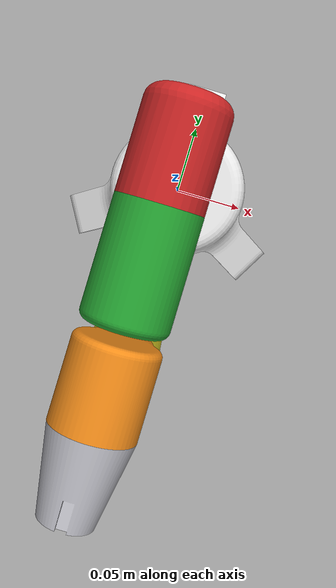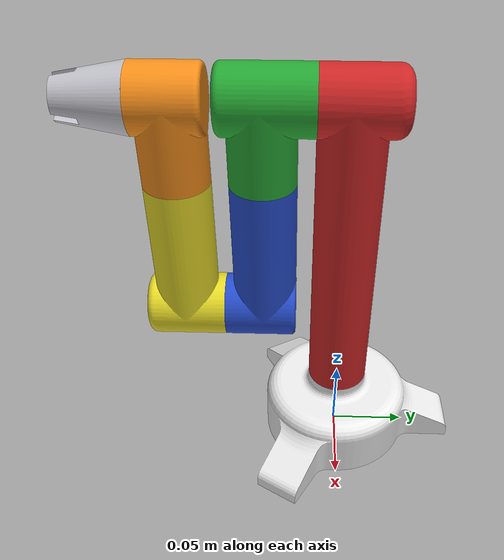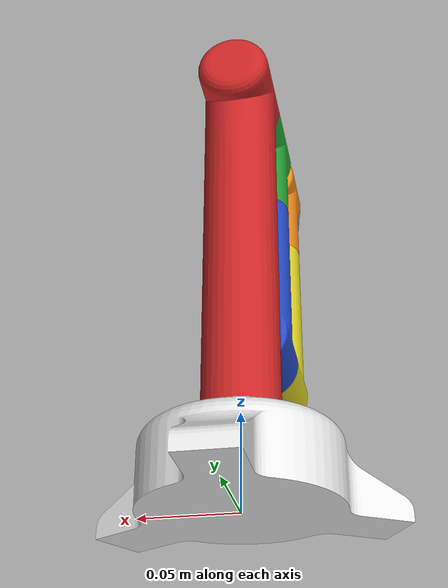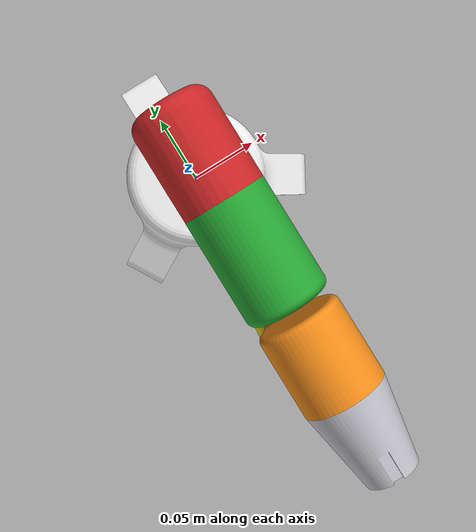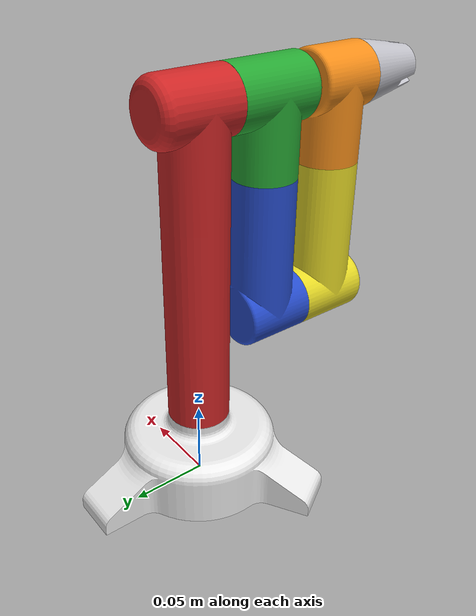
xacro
<?xml version="1.0"?>
<robot xmlns:xacro="http://www.ros.org/wiki/xacro" name="welder">
    <xacro:arg name="initial_positions_file" default="initial_positions.yaml" />

    <!-- Import welder urdf file -->
    <xacro:include filename="$(find welder_description)/urdf/welder.xacro" />

    <!-- Import control_xacro -->
    <xacro:include filename="welder.ros2_control.xacro" />

    <xacro:welder_ros2_control name="FakeSystem" initial_positions_file="$(arg initial_positions_file)"/>

</robot>

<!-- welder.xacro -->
<robot name="welder" xmlns:xacro="http://www.ros.org/wiki/xacro">

<xacro:include filename="$(find welder_description)/urdf/ros2_control.xacro" />
<xacro:include filename="$(find welder_description)/urdf/welder.trans" />
<xacro:include filename="$(find welder_description)/urdf/welder.gazebo" />

<link name="world">

</link>

<link name="base_link">
  <inertial>
    <origin xyz="-7.16285389829585e-11 -1.5064593165281103e-11 0.019107627086653742" rpy="0 0 0"/>
    <mass value="2.955437891841375"/>
    <inertia ixx="0.002819" iyy="0.002819" izz="0.004764" ixy="-0.0" iyz="-0.0" ixz="-0.0"/>
  </inertial>
  <visual>
    <origin xyz="0 0 0" rpy="0 0 0"/>
    <geometry>
      <mesh filename="file://$(find welder_description)/meshes/base_link.stl" scale="0.001 0.001 0.001"/>
    </geometry>
  </visual>
  <collision>
    <origin xyz="0 0 0" rpy="0 0 0"/>
    <geometry>
      <mesh filename="file://$(find welder_description)/meshes/base_link.stl" scale="0.001 0.001 0.001"/>
    </geometry>
  </collision>
</link>

<link name="link_1_1">
  <inertial>
    <origin xyz="0.0 0.0009431909165482249 0.11440920058437602" rpy="0 0 0"/>
    <mass value="2.2877730999420254"/>
    <inertia ixx="0.009859" iyy="0.009807" izz="0.000515" ixy="0.0" iyz="-0.000185" ixz="0.0"/>
  </inertial>
  <visual>
    <origin xyz="-0.0 -0.0 -0.05" rpy="0 0 0"/>
    <geometry>
      <mesh filename="file://$(find welder_description)/meshes/link_1_1.stl" scale="0.001 0.001 0.001"/>
    </geometry>
  </visual>
  <collision>
    <origin xyz="-0.0 -0.0 -0.05" rpy="0 0 0"/>
    <geometry>
      <mesh filename="file://$(find welder_description)/meshes/link_1_1.stl" scale="0.001 0.001 0.001"/>
    </geometry>
  </collision>
</link>

<link name="link_2_1">
  <inertial>
    <origin xyz="0.0 -0.02834196834303381 -0.012543410312423592" rpy="0 0 0"/>
    <mass value="0.8650806084810733"/>
    <inertia ixx="0.000478" iyy="0.0004" izz="0.000257" ixy="0.0" iyz="-1.8e-05" ixz="0.0"/>
  </inertial>
  <visual>
    <origin xyz="-0.0 0.02 -0.25" rpy="0 0 0"/>
    <geometry>
      <mesh filename="file://$(find welder_description)/meshes/link_2_1.stl" scale="0.001 0.001 0.001"/>
    </geometry>
  </visual>
  <collision>
    <origin xyz="-0.0 0.02 -0.25" rpy="0 0 0"/>
    <geometry>
      <mesh filename="file://$(find welder_description)/meshes/link_2_1.stl" scale="0.001 0.001 0.001"/>
    </geometry>
  </collision>
</link>

<link name="link_3_1">
  <inertial>
    <origin xyz="0.0 -0.0009734727614764405 -0.056920756556270824" rpy="0 0 0"/>
    <mass value="1.1630985552142648"/>
    <inertia ixx="0.001298" iyy="0.00127" izz="0.000267" ixy="0.0" iyz="-3.8e-05" ixz="0.0"/>
  </inertial>
  <visual>
    <origin xyz="-0.0 0.05 -0.2" rpy="0 0 0"/>
    <geometry>
      <mesh filename="file://$(find welder_description)/meshes/link_3_1.stl" scale="0.001 0.001 0.001"/>
    </geometry>
  </visual>
  <collision>
    <origin xyz="-0.0 0.05 -0.2" rpy="0 0 0"/>
    <geometry>
      <mesh filename="file://$(find welder_description)/meshes/link_3_1.stl" scale="0.001 0.001 0.001"/>
    </geometry>
  </collision>
</link>

<link name="link_4_1">
  <inertial>
    <origin xyz="0.0 -0.024901368509315194 0.031832335951871196" rpy="0 0 0"/>
    <mass value="1.2085805984841382"/>
    <inertia ixx="0.001374" iyy="0.001327" izz="0.000295" ixy="0.0" iyz="4e-06" ixz="0.0"/>
  </inertial>
  <visual>
    <origin xyz="-0.0 0.075 -0.11" rpy="0 0 0"/>
    <geometry>
      <mesh filename="file://$(find welder_description)/meshes/link_4_1.stl" scale="0.001 0.001 0.001"/>
    </geometry>
  </visual>
  <collision>
    <origin xyz="-0.0 0.075 -0.11" rpy="0 0 0"/>
    <geometry>
      <mesh filename="file://$(find welder_description)/meshes/link_4_1.stl" scale="0.001 0.001 0.001"/>
    </geometry>
  </collision>
</link>

<link name="link_5_1">
  <inertial>
    <origin xyz="0.0 -4.404769588479962e-05 0.03489668781804081" rpy="0 0 0"/>
    <mass value="0.7187100595069817"/>
    <inertia ixx="0.000352" iyy="0.000343" izz="0.000159" ixy="-0.0" iyz="1e-06" ixz="0.0"/>
  </inertial>
  <visual>
    <origin xyz="-0.0 0.1 -0.2" rpy="0 0 0"/>
    <geometry>
      <mesh filename="file://$(find welder_description)/meshes/link_5_1.stl" scale="0.001 0.001 0.001"/>
    </geometry>
  </visual>
  <collision>
    <origin xyz="-0.0 0.1 -0.2" rpy="0 0 0"/>
    <geometry>
      <mesh filename="file://$(find welder_description)/meshes/link_5_1.stl" scale="0.001 0.001 0.001"/>
    </geometry>
  </collision>
</link>

<link name="link_6_1">
  <inertial>
    <origin xyz="0.0 -0.01680268432280871 1.6653345369377348e-16" rpy="0 0 0"/>
    <mass value="0.26501912859947435"/>
    <inertia ixx="5.2e-05" iyy="3.9e-05" izz="5.2e-05" ixy="0.0" iyz="-0.0" ixz="-0.0"/>
  </inertial>
  <visual>
    <origin xyz="-0.0 0.12 -0.25" rpy="0 0 0"/>
    <geometry>
      <mesh filename="file://$(find welder_description)/meshes/link_6_1.stl" scale="0.001 0.001 0.001"/>
    </geometry>
  </visual>
  <collision>
    <origin xyz="-0.0 0.12 -0.25" rpy="0 0 0"/>
    <geometry>
      <mesh filename="file://$(find welder_description)/meshes/link_6_1.stl" scale="0.001 0.001 0.001"/>
    </geometry>
  </collision>
</link>

<joint name="world_joint" type="fixed">
  <parent link="world"/>
  <child link="base_link"/>
</joint>

<joint name="joint_1" type="continuous">
  <origin xyz="0.0 0.0 0.05" rpy="0 0 0"/>
  <parent link="base_link"/>
  <child link="link_1_1"/>
  <axis xyz="0.0 0.0 1.0"/>
</joint>

<joint name="joint_2" type="continuous">
  <origin xyz="0.0 -0.02 0.2" rpy="0 0 0"/>
  <parent link="link_1_1"/>
  <child link="link_2_1"/>
  <axis xyz="0.0 -1.0 0.0"/>
</joint>

<joint name="joint_3" type="continuous">
  <origin xyz="0.0 -0.03 -0.05" rpy="0 0 0"/>
  <parent link="link_2_1"/>
  <child link="link_3_1"/>
  <axis xyz="0.0 0.0 -1.0"/>
</joint>

<joint name="joint_4" type="continuous">
  <origin xyz="0.0 -0.025 -0.09" rpy="0 0 0"/>
  <parent link="link_3_1"/>
  <child link="link_4_1"/>
  <axis xyz="0.0 1.0 0.0"/>
</joint>

<joint name="joint_5" type="continuous">
  <origin xyz="0.0 -0.025 0.09" rpy="0 0 0"/>
  <parent link="link_4_1"/>
  <child link="link_5_1"/>
  <axis xyz="0.0 0.0 1.0"/>
</joint>

<joint name="joint_6" type="continuous">
  <origin xyz="0.0 -0.02 0.05" rpy="0 0 0"/>
  <parent link="link_5_1"/>
  <child link="link_6_1"/>
  <axis xyz="0.0 -1.0 0.0"/>
</joint>

</robot>

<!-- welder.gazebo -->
<robot name="welder" xmlns:xacro="http://www.ros.org/wiki/xacro" >

<xacro:property name="Silver" value="Gazebo/Silver" />
<xacro:property name="Red" value="Gazebo/Red" />
<xacro:property name="Blue" value="Gazebo/Blue" />
<xacro:property name="White" value="Gazebo/White" />
<xacro:property name="Green" value="Gazebo/Green" />
<xacro:property name="Yellow" value="Gazebo/Yellow" />
<xacro:property name="Orange" value="Gazebo/Orange" />

<gazebo>
    <plugin name="gazebo_ros2_control" filename="libgazebo_ros2_control.so">
        <robot_sim_type>gazebo_ros2_control/GazeboSystem</robot_sim_type>
        <parameters>$(find welder_description)/config/my_controllers.yaml</parameters>
    </plugin>
</gazebo>

<gazebo reference="base_link">
  <material>${White}</material>
  <mu1>0.2</mu1>
  <mu2>0.2</mu2>
  <self_collide>true</self_collide>
  <gravity>true</gravity>
</gazebo>

<gazebo reference="link_1_1">
  <material>${Red}</material>
  <mu1>0.2</mu1>
  <mu2>0.2</mu2>
  <self_collide>true</self_collide>
</gazebo>

<gazebo reference="link_2_1">
  <material>${Green}</material>
  <mu1>0.2</mu1>
  <mu2>0.2</mu2>
  <self_collide>true</self_collide>
</gazebo>

<gazebo reference="link_3_1">
  <material>${Blue}</material>
  <mu1>0.2</mu1>
  <mu2>0.2</mu2>
  <self_collide>true</self_collide>
</gazebo>

<gazebo reference="link_4_1">
  <material>${Yellow}</material>
  <mu1>0.2</mu1>
  <mu2>0.2</mu2>
  <self_collide>true</self_collide>
</gazebo>

<gazebo reference="link_5_1">
  <material>${Orange}</material>
  <mu1>0.2</mu1>
  <mu2>0.2</mu2>
  <self_collide>true</self_collide>
</gazebo>

<gazebo reference="link_6_1">
  <material>${Silver}</material>
  <mu1>0.2</mu1>
  <mu2>0.2</mu2>
  <self_collide>true</self_collide>
</gazebo>

</robot>
